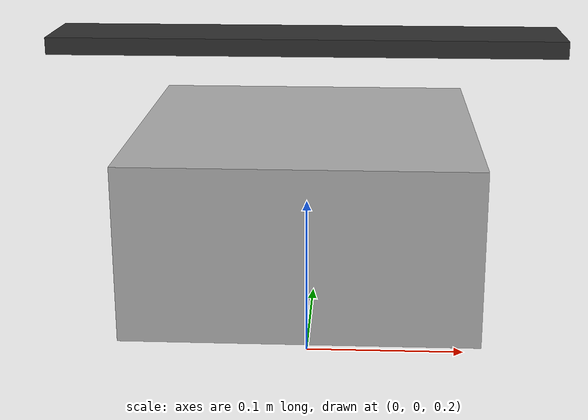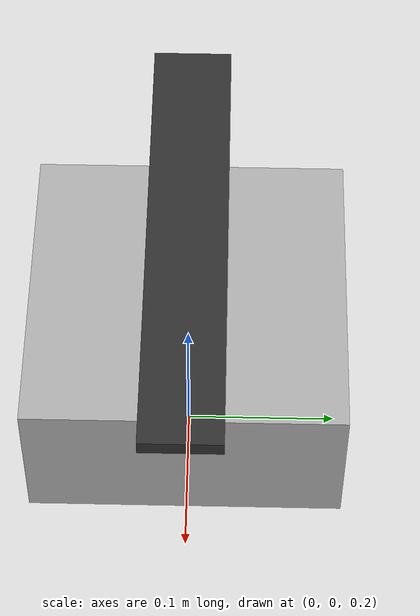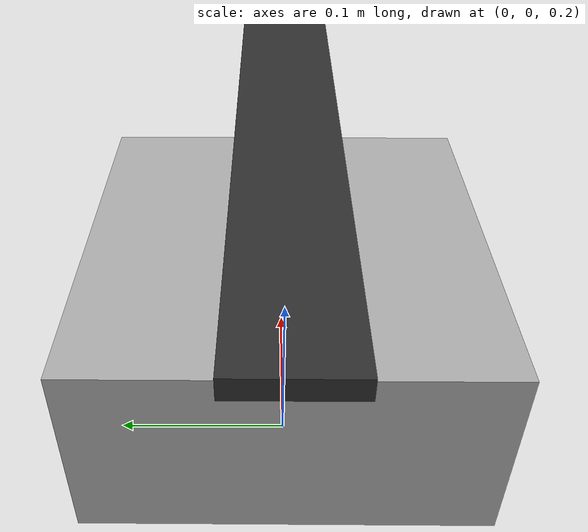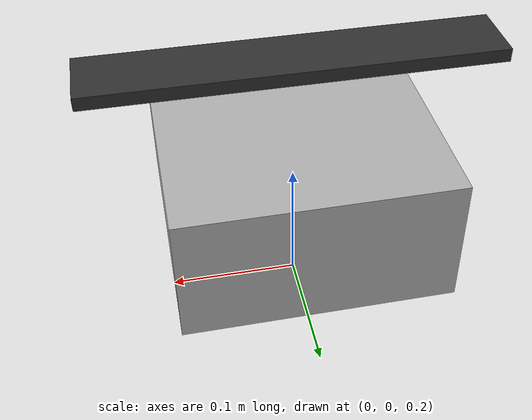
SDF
<?xml version="1.0" ?>
<sdf version="1.9">
  <model name="box_motor_drone">
    <static>false</static>
    <pose>0 0 0.3 0 0 0</pose>

    <!-- Base box body -->
    <link name="base_link">
      <pose>0 0 0 0 0 0</pose>
      <inertial>
        <mass>10.0</mass>
        <inertia>
          <ixx>0.1</ixx>
          <iyy>0.1</iyy>
          <izz>0.1</izz>
        </inertia>
      </inertial>
      <collision name="base_collision">
        <geometry>
          <box>
            <size>0.2 0.2 0.1</size>
          </box>
        </geometry>
      </collision>
      <visual name="base_visual">
        <geometry>
          <box>
            <size>0.2 0.2 0.1</size>
          </box>
        </geometry>
      </visual>
    </link>

    <!-- Rotor with elliptical visual -->
    <link name="rotor_0">
      <pose>0 0 0.1 0 0 0</pose>
      <inertial>
        <mass>0.05</mass>
        <inertia>
          <ixx>1e-5</ixx>
          <iyy>1e-5</iyy>
          <izz>2e-5</izz>
        </inertia>
      </inertial>
      <collision name="rotor_collision">
        <geometry>
          <box>
            <size>0.3 0.05 0.01</size>
          </box>
        </geometry>
      </collision>
      <visual name="rotor_visual">
        <geometry>
          <box>
            <size>0.3 0.05 0.01</size>  <!-- Elliptical-like shape -->
          </box>
        </geometry>
        <material>
          <ambient>0.1 0.1 0.1 1</ambient>
          <diffuse>0.2 0.2 0.2 1</diffuse>
        </material>
      </visual>
    </link>

    <joint name="rotor_0_joint" type="revolute">
      <parent>base_link</parent>
      <child>rotor_0</child>
      <axis>
        <xyz>0 0 1</xyz>
        <limit>
          <lower>-1e16</lower>
          <upper>1e16</upper>
        </limit>
      </axis>
    </joint>

    <plugin name="gz::sim::systems::MulticopterMotorModel" filename="gz-sim-multicopter-motor-model-system">
      <jointName>rotor_0_joint</jointName>
      <linkName>rotor_0</linkName>
      <turningDirection>ccw</turningDirection>
      <timeConstantUp>0.01</timeConstantUp>
      <timeConstantDown>0.02</timeConstantDown>
      <maxRotVelocity>2000</maxRotVelocity>
      <motorConstant>1e-5</motorConstant>
      <momentConstant>0.02</momentConstant>
      <commandSubTopic>command/motor_speed</commandSubTopic>
      <motorNumber>0</motorNumber>
      <rotorDragCoefficient>1e-5</rotorDragCoefficient>
      <rollingMomentCoefficient>1e-6</rollingMomentCoefficient>
      <rotorVelocitySlowdownSim>10</rotorVelocitySlowdownSim>
      <motorType>velocity</motorType>
    </plugin>
  </model>
</sdf>
